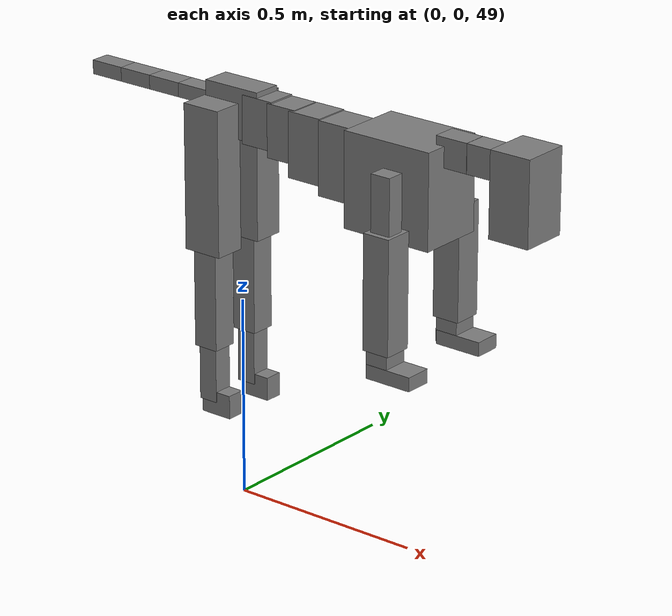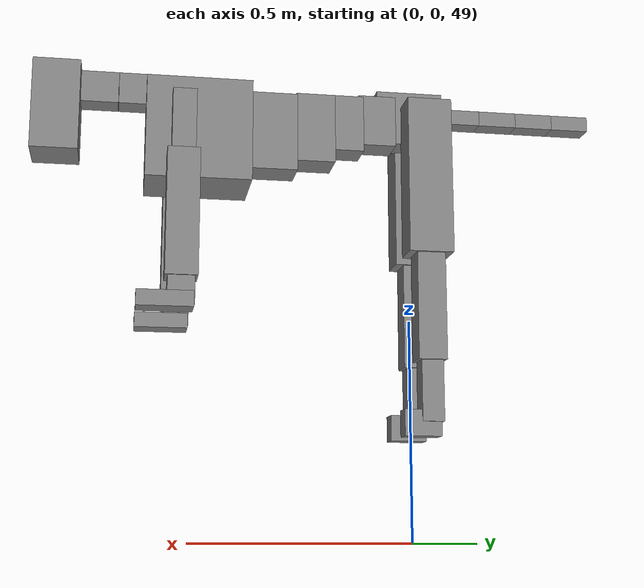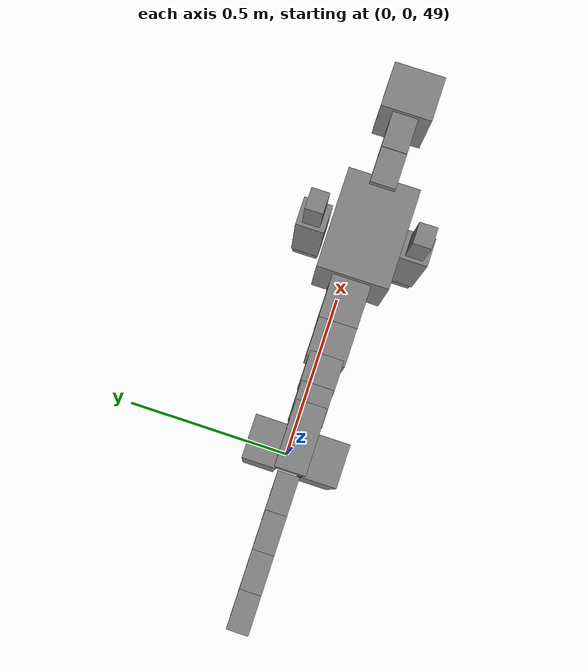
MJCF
<mujoco model="dog">

    <default>
        <joint armature="0.02" stiffness="1" damping="0.2" limited="true"/>
        <geom condim="3" friction="1 0.05 0.05" margin="0.01"/>
        <motor ctrllimited="true" ctrlrange="-1.0 1.0" forcelimited="true" gear="50"/>
    </default>

    <compiler inertiafromgeom="true" angle="radian"/>

    <option timestep="0.016" iterations="50" tolerance="1e-10" solver="Newton" jacobian="dense" cone="pyramidal"/>

    <size nconmax="20000" njmax="60000" nstack="5000000"/>
    <visual>
        <map force="0.1" zfar="30"/>
        <rgba haze="0.15 0.25 0.35 1"/>
        <quality shadowsize="2048"/>
        <global offwidth="800" offheight="800"/>
    </visual>

    <asset>
        <texture type="skybox" builtin="gradient" rgb1="0.3 0.5 0.7" rgb2="0 0 0" width="512" height="512"/>
        <texture name="texplane" type="2d" builtin="checker" rgb1=".2 .3 .4" rgb2=".1 0.15 0.2" width="512" height="512"
                 mark="cross" markrgb=".8 .8 .8"/>
        <texture name="texgeom" type="cube" builtin="flat" mark="cross" width="127" height="1278" rgb1="0.8 0.6 0.4"
                 rgb2="0.8 0.6 0.4" markrgb="1 1 1" random="0.01"/>

        <material name="matplane" reflectance="0.3" texture="texplane" texrepeat="1 1" texuniform="true"/>
        <material name="matgeom" texture="texgeom" texuniform="true" rgba="0.8 0.6 .4 1"/>
    </asset>

    <worldbody>
        <geom name="floor" pos="0 0 0" size="0 0 .25" type="plane" material="matplane" condim="3"/>

        <light directional="false" diffuse=".2 .2 .2" specular="0 0 0" pos="0 0 5" dir="0 0 -1" castshadow="false"/>
        <light mode="targetbodycom" target="torso" directional="false" diffuse=".8 .8 .8" specular="0.3 0.3 0.3"
               pos="0 0 4.0" dir="0 0 -1"/>

        <body name="root" pos="0 0 50">
            <freejoint name="root_1"/>
            <geom type="box" pos="0 0 -0.02" size="0.0774  0.0358  0.063" density="2030"/>

            <body name="spine1" pos="0.054 0 0">
                <joint name="spine1_y" axis="0 1 0" range="0 0.7" limited="true"/>
                <geom type="box" pos="0.02375 0 -0.03" size="0.04375  0.0375  0.05985" density="2030"/>

                <body name="spine2" pos="0.0612 0 0">
                    <joint name="spine2_y" axis="0 1 0" range="-0.15 0.15" limited="true"/>
                    <geom type="box" pos="0.03555  0  -0.04" size="0.04055  0.039  0.06615" density="2030"/>

                    <body name="spine3" pos="0.0730 0 0">
                        <joint name="spine3_y" axis="0 1 0" range="-0.15 0.15" limited="true"/>
                        <geom type="box" pos="0.03555  0  -0.057" size="0.04555  0.0445  0.081" density="2030"/>

                        <body name="spine4" pos="0.0780 0 0">
                            <joint name="spine4_y" axis="0 1 0" range="-0.15 0.15" limited="true"/>
                            <geom type="box" pos="0.05265  0  -0.07" size="0.05265  0.045  0.09135" density="2030"/>

                            <body name="torso" pos="0.1082 0 0">
                                <joint name="torso_y" axis="0 1 0" range="-0.15 0.15" limited="true"/>
                                <geom type="box" pos="0.11925  0  -0.085" size="0.11925  0.085  0.11745"
                                      density="2030"/>

                                <body name="neck1" pos="0.2160  0   0.0180">
                                    <joint name="neck1_y" axis="0 1 0" range="-1.2  -1" limited="true"/>
                                    <geom type="box" pos="0.0423  0  0" size="0.0423  0.03  0.036" density="2325"/>

                                    <body name="neck2" pos="0.0853  0  0">
                                        <joint name="neck2_y" axis="0 1 0" range="0.1  0" limited="true"/>
                                        <geom type="box" pos="0.0423  0  0" size="0.0423  0.03  0.036" density="2325"/>

                                        <body name="head" pos="0.0853  0  0">
                                            <joint name="head_y" axis="0 1 0" range="-0.3  -0.2" limited="true"/>
                                            <geom type="box" pos="0.0531  0  -0.055" size="0.0531  0.06  0.1044"
                                                  density="4030"/>

                                        </body>
                                    </body>
                                </body>

                                <body name="front_shoulder" pos="0.156  0   -0.0480">
                                    <joint name="front_shoulder_y" axis="0 1 0" range="-1 1.5" limited="true"/>
                                    <geom type="box" pos="0 0.13 -0.0559" size="0.0262  0.0224  0.0826" density="1158"/>
                                    <geom type="box" pos="0 -0.13 -0.0559" size="0.0262  0.0224  0.0826"
                                          density="1158"/>

                                    <body name="front_elbow" pos="0  0  -0.1119">
                                        <joint name="front_elbow_y" axis="0 1 0" range="-2 0" limited="true"/>
                                        <geom type="box" pos="0 0.13 -0.1413" size="0.0356  0.0364  0.1413"
                                              density="1081"/>
                                        <geom type="box" pos="0 -0.13 -0.1413" size="0.0356  0.0364  0.1413"
                                              density="1081"/>

                                        <body name="front_wrist" pos="0  0  -0.2825">
                                            <joint name="front_wrist_y" axis="0 1 0" range="-0.2 0" limited="true"/>
                                            <geom type="box" pos="0 0.13 -0.0241" size="0.0293  0.0325  0.0373"
                                                  density="1664"/>
                                            <geom type="box" pos="0 -0.13 -0.0241" size="0.0293  0.0325  0.0373"
                                                  density="1664"/>

                                            <body name="front_finger_end" pos="0  0  -0.0483">
                                                <joint name="front_finger_y" axis="0 1 0" range="-0.4 1"
                                                       limited="true"/>
                                                <geom type="box" pos="0.0335  0.13  -0.0023"
                                                      size="0.0613  0.0335  0.0173" density="1515"/>
                                                <geom type="box" pos="0.0335  -0.13  -0.0023"
                                                      size="0.0613  0.0335  0.0173" density="1515"/>

                                            </body>

                                        </body>
                                    </body>
                                </body>

                            </body>
                        </body>
                    </body>
                </body>
            </body>

            <body name="back_hip" pos="-0.03 0 -0.018">
                <joint name="back_hip_y" axis="0 1 0" range="-1.5 0.3" limited="true"/>
                <geom type="box" pos="0 0.07 -0.1580" size="0.0508  0.0398  0.1808" density="1154"/>
                <geom type="box" pos="0 -0.07 -0.1580" size="0.0508  0.0398  0.1808" density="1154"/>

                <body name="back_knee" pos="0  0  -0.3159">
                    <joint name="back_knee_y" axis="0 1 0" range="0 2.8" limited="true"/>
                    <geom type="box" pos="0 0.07 -0.1251" size="0.0323  0.0319  0.1407" density="1227"/>
                    <geom type="box" pos="0 -0.07 -0.1251" size="0.0323  0.0319  0.1407" density="1227"/>

                    <body name="back_ankle" pos="0  0  -0.2502">
                        <joint name="back_ankle_y" axis="0 1 0" range="-2.2 0" limited="true"/>
                        <geom type="box" pos="0 0.07 -0.0705" size="0.0248  0.0248  0.0818" density="1284"/>
                        <geom type="box" pos="0 -0.07 -0.0705" size="0.0248  0.0248  0.0818" density="1284"/>

                        <body name="back_toe_end" pos="0  0  -0.1411">
                            <joint name="back_toe_y" axis="0 1 0" range="-0.4 1" limited="true"/>
                            <geom type="box" pos="0.0227  0.07  -0.0143" size="0.0416  0.0227  0.0293" density="1515"/>
                            <geom type="box" pos="0.0227  -0.07  -0.0143" size="0.0416  0.0227  0.0293" density="1515"/>

                        </body>
                    </body>
                </body>
            </body>

            <body name="tail1" pos="-0.074 0 -0.006">
                <joint name="tail1_y" axis="0 1 0" range="-0.2 0.2" limited="true"/>
                <geom type="box" pos="-0.0536  0  0" size="0.045  0.025  0.0175" density="1587"/>

                <body name="tail2" pos="-0.09 0 0">
                    <joint name="tail2_y" axis="0 1 0" range="-0.2 0.2" limited="true"/>
                    <geom type="box" pos="-0.0536  0  0" size="0.045  0.025  0.0175" density="1587"/>

                    <body name="tail3" pos="-0.09 0 0">
                        <joint name="tail3_y" axis="0 1 0" range="-0.2 0.2" limited="true"/>
                        <geom type="box" pos="-0.0536  0  0" size="0.045  0.025  0.0175" density="1587"/>

                        <body name="tail4" pos="-0.09 0 0">
                            <joint name="tail4_y" axis="0 1 0" range="-0.2 0.2" limited="true"/>
                            <geom type="box" pos="-0.0536  0  0" size="0.045  0.025  0.0175" density="1587"/>

                        </body>
                    </body>
                </body>
            </body>
        </body>
    </worldbody>

    <actuator>
        <motor joint="spine1_y" forcerange="-150 150     "/>
        <motor joint="spine2_y" forcerange="-150 150     "/>
        <motor joint="spine3_y" forcerange="-150 150     "/>
        <motor joint="spine4_y" forcerange="-150 150     "/>
        <motor joint="torso_y" forcerange="-150 150     "/>
        <motor joint="neck1_y" forcerange="-100 100       "/>
        <motor joint="neck2_y" forcerange="-100 100       "/>
        <motor joint="head_y" forcerange="-150 150       "/>
        <motor joint="front_shoulder_y" forcerange="-100.50 148.84"/>
        <motor joint="front_elbow_y" forcerange="-181.45 183.01"/>
        <motor joint="front_wrist_y" forcerange="-142.16 118.15"/>
        <motor joint="front_finger_y" forcerange="-47.60 90.86"/>
        <motor joint="back_hip_y" forcerange="-353.49 377.43"/>
        <motor joint="back_knee_y" forcerange="-277.59 386.09"/>
        <motor joint="back_angle_y" forcerange="-127.13 169.74"/>
        <motor joint="back_toe_y" forcerange="-39.75 61.93"/>
        <motor joint="tail1_y" forcerange="-50 50     "/>
        <motor joint="tail2_y" forcerange="-50 50     "/>
        <motor joint="tail3_y" forcerange="-50 50     "/>
        <motor joint="tail4_y" forcerange="-50 50     "/>
    </actuator>
</mujoco>
